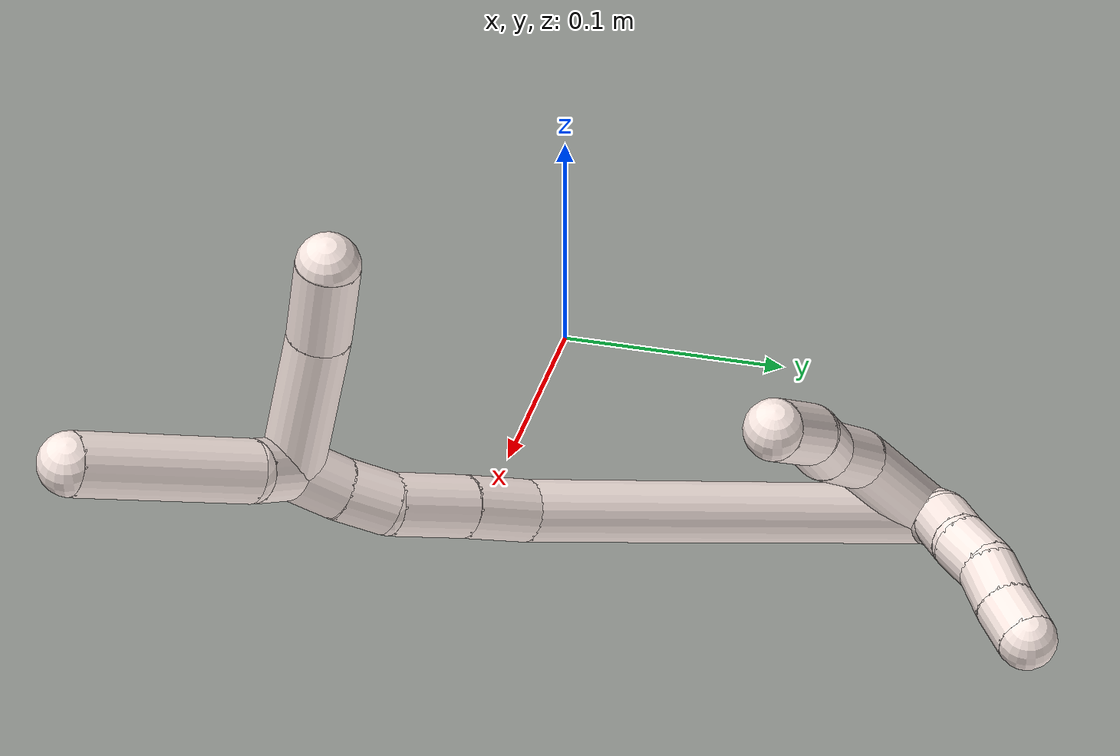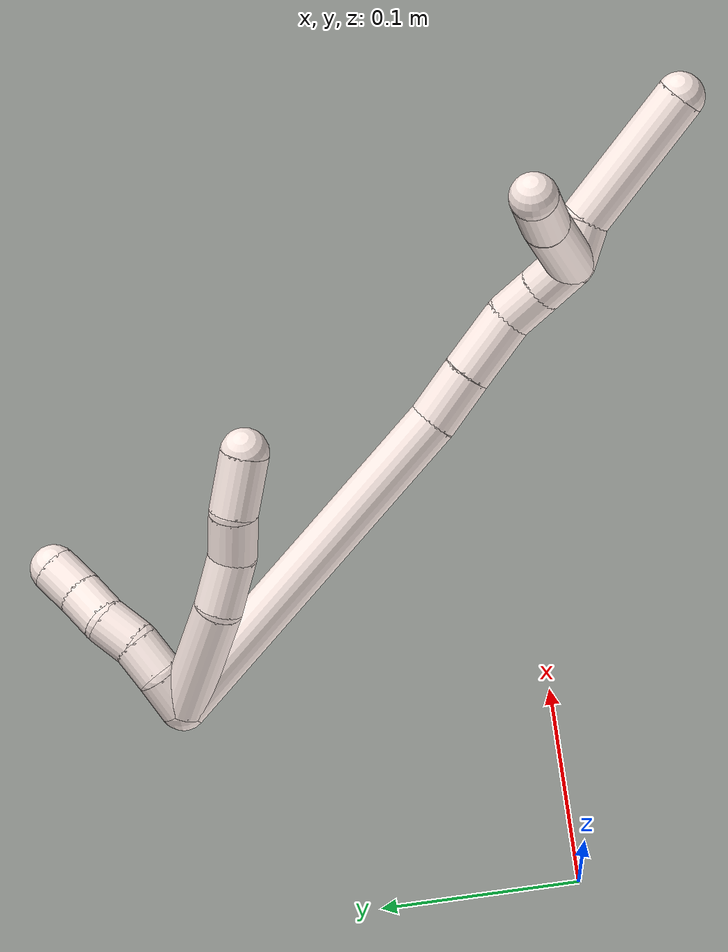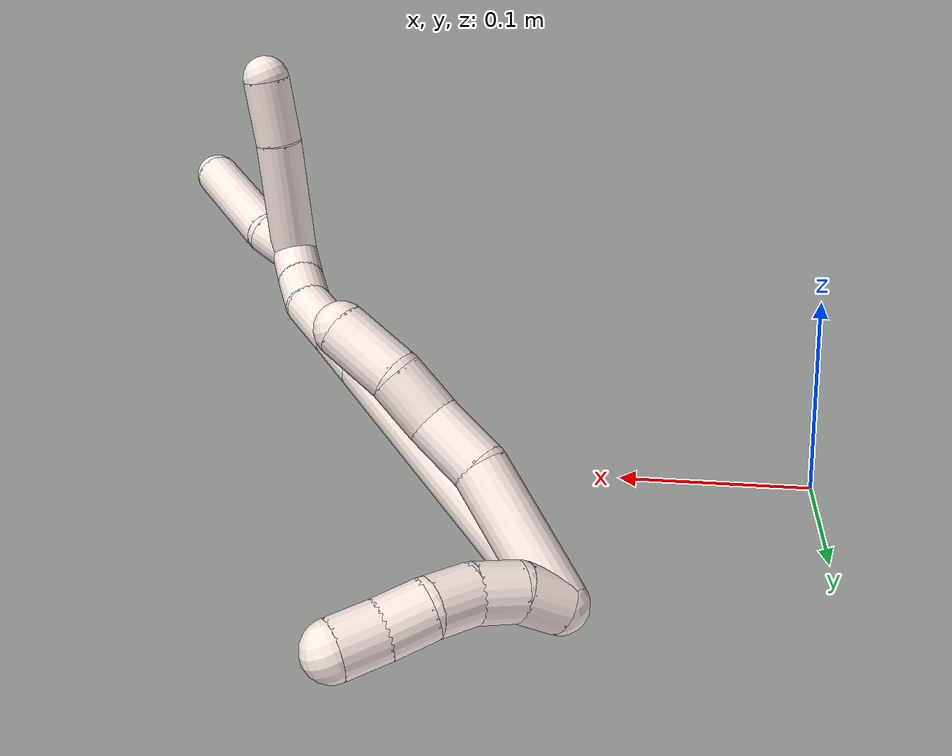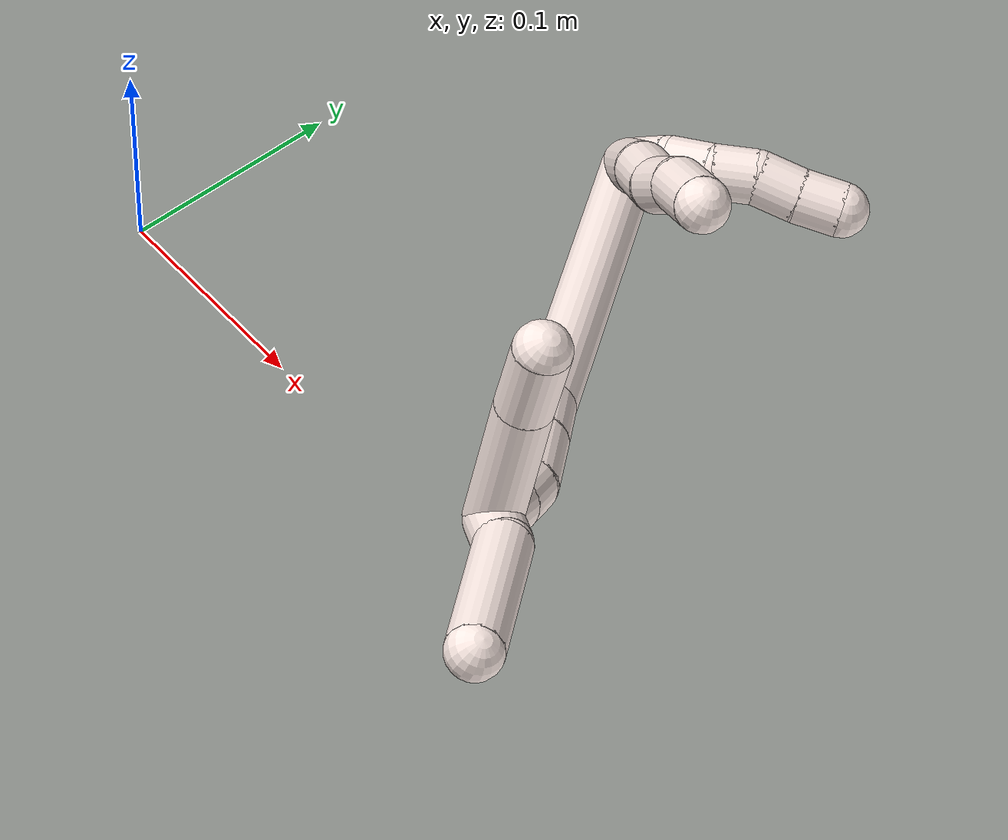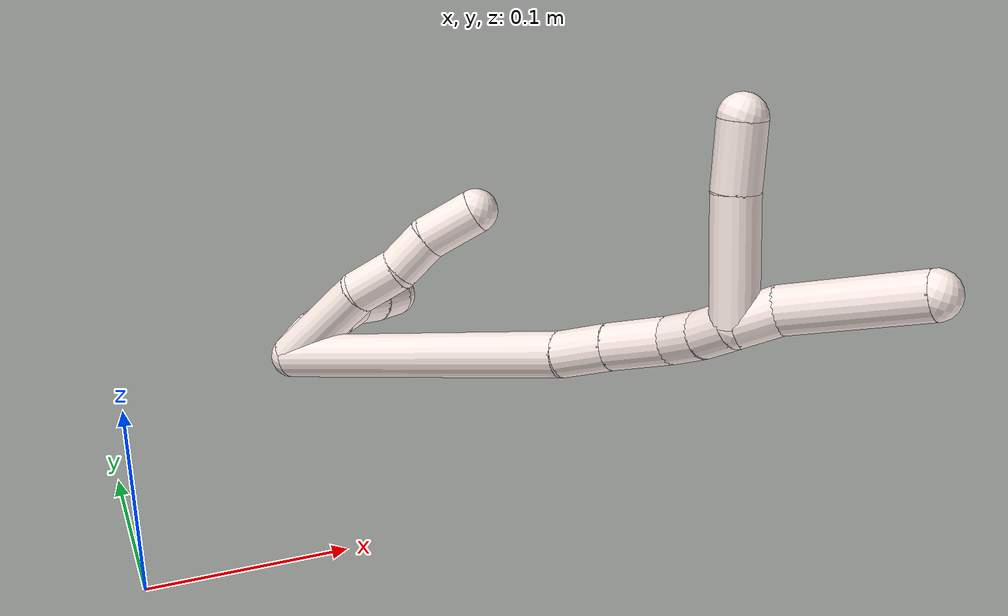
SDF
<sdf version="1.7">
 <world name="default">
  <model name="11">
   <static>0</static>
   <link name="11">
    <collision name="collision-cylinder-e_1_2_8">
     <pose>0.005855 -0.01533 0.027412 0.509931 0.184308 0.048165</pose>
     <geometry><cylinder><radius>0.0125</radius><length>0.063897</length></cylinder></geometry>
     <surface>
      <friction><ode><mu>1.16</mu><mu2>1.16</mu2><slip1>0</slip1><slip2>0</slip2></ode></friction>
      <contact><ode><kp>1e+06</kp><kd>1</kd><max_vel>0</max_vel><min_depth>0.001</min_depth></ode></contact>
     </surface>
    </collision>
    <visual name="visual-cylinder-e_1_2_8">
     <pose>0.005855 -0.01533 0.027412 0.509931 0.184308 0.048165</pose>
     <geometry><cylinder><radius>0.0125</radius><length>0.063897</length></cylinder></geometry>
     <material><ambient>1 0.933333 0.909804 1</ambient></material>
    </visual>
    <collision name="collision-cylinder-e_2_8_9">
     <pose>0.01777 -0.037814 0.065945 0.571548 0.429714 0.128061</pose>
     <geometry><cylinder><radius>0.0125</radius><length>0.029091</length></cylinder></geometry>
     <surface>
      <friction><ode><mu>1.16</mu><mu2>1.16</mu2><slip1>0</slip1><slip2>0</slip2></ode></friction>
      <contact><ode><kp>1e+06</kp><kd>1</kd><max_vel>0</max_vel><min_depth>0.001</min_depth></ode></contact>
     </surface>
    </collision>
    <visual name="visual-cylinder-e_2_8_9">
     <pose>0.01777 -0.037814 0.065945 0.571548 0.429714 0.128061</pose>
     <geometry><cylinder><radius>0.0125</radius><length>0.029091</length></cylinder></geometry>
     <material><ambient>1 0.933333 0.909804 1</ambient></material>
    </visual>
    <collision name="collision-cylinder-e_3_9_10">
     <pose>0.027973 -0.04817 0.08835 0.276596 0.33958 0.047715</pose>
     <geometry><cylinder><radius>0.0125</radius><length>0.024879</length></cylinder></geometry>
     <surface>
      <friction><ode><mu>1.16</mu><mu2>1.16</mu2><slip1>0</slip1><slip2>0</slip2></ode></friction>
      <contact><ode><kp>1e+06</kp><kd>1</kd><max_vel>0</max_vel><min_depth>0.001</min_depth></ode></contact>
     </surface>
    </collision>
    <visual name="visual-cylinder-e_3_9_10">
     <pose>0.027973 -0.04817 0.08835 0.276596 0.33958 0.047715</pose>
     <geometry><cylinder><radius>0.0125</radius><length>0.024879</length></cylinder></geometry>
     <material><ambient>1 0.933333 0.909804 1</ambient></material>
    </visual>
    <collision name="collision-cylinder-e_4_10_6">
     <pose>0.039902 -0.058368 0.111823 0.520967 0.505882 0.137571</pose>
     <geometry><cylinder><radius>0.0125</radius><length>0.032133</length></cylinder></geometry>
     <surface>
      <friction><ode><mu>1.16</mu><mu2>1.16</mu2><slip1>0</slip1><slip2>0</slip2></ode></friction>
      <contact><ode><kp>1e+06</kp><kd>1</kd><max_vel>0</max_vel><min_depth>0.001</min_depth></ode></contact>
     </surface>
    </collision>
    <visual name="visual-cylinder-e_4_10_6">
     <pose>0.039902 -0.058368 0.111823 0.520967 0.505882 0.137571</pose>
     <geometry><cylinder><radius>0.0125</radius><length>0.032133</length></cylinder></geometry>
     <material><ambient>1 0.933333 0.909804 1</ambient></material>
    </visual>
    <collision name="collision-cylinder-e_1_2_11">
     <pose>0.006086 0.003229 0.007248 -0.419073 0.654243 -0.144065</pose>
     <geometry><cylinder><radius>0.0125</radius><length>0.02</length></cylinder></geometry>
     <surface>
      <friction><ode><mu>1.16</mu><mu2>1.16</mu2><slip1>0</slip1><slip2>0</slip2></ode></friction>
      <contact><ode><kp>1e+06</kp><kd>1</kd><max_vel>0</max_vel><min_depth>0.001</min_depth></ode></contact>
     </surface>
    </collision>
    <visual name="visual-cylinder-e_1_2_11">
     <pose>0.006086 0.003229 0.007248 -0.419073 0.654243 -0.144065</pose>
     <geometry><cylinder><radius>0.0125</radius><length>0.02</length></cylinder></geometry>
     <material><ambient>1 0.933333 0.909804 1</ambient></material>
    </visual>
    <collision name="collision-cylinder-e_2_11_12">
     <pose>0.020247 0.010002 0.019212 -0.644554 0.939988 -0.336035</pose>
     <geometry><cylinder><radius>0.0125</radius><length>0.02</length></cylinder></geometry>
     <surface>
      <friction><ode><mu>1.16</mu><mu2>1.16</mu2><slip1>0</slip1><slip2>0</slip2></ode></friction>
      <contact><ode><kp>1e+06</kp><kd>1</kd><max_vel>0</max_vel><min_depth>0.001</min_depth></ode></contact>
     </surface>
    </collision>
    <visual name="visual-cylinder-e_2_11_12">
     <pose>0.020247 0.010002 0.019212 -0.644554 0.939988 -0.336035</pose>
     <geometry><cylinder><radius>0.0125</radius><length>0.02</length></cylinder></geometry>
     <material><ambient>1 0.933333 0.909804 1</ambient></material>
    </visual>
    <collision name="collision-cylinder-e_3_12_13">
     <pose>0.03611 0.019121 0.0268 -1.09488 0.892735 -0.567719</pose>
     <geometry><cylinder><radius>0.0125</radius><length>0.02</length></cylinder></geometry>
     <surface>
      <friction><ode><mu>1.16</mu><mu2>1.16</mu2><slip1>0</slip1><slip2>0</slip2></ode></friction>
      <contact><ode><kp>1e+06</kp><kd>1</kd><max_vel>0</max_vel><min_depth>0.001</min_depth></ode></contact>
     </surface>
    </collision>
    <visual name="visual-cylinder-e_3_12_13">
     <pose>0.03611 0.019121 0.0268 -1.09488 0.892735 -0.567719</pose>
     <geometry><cylinder><radius>0.0125</radius><length>0.02</length></cylinder></geometry>
     <material><ambient>1 0.933333 0.909804 1</ambient></material>
    </visual>
    <collision name="collision-cylinder-e_4_13_14">
     <pose>0.053098 0.02849 0.030657 -1.31723 1.16816 -0.945691</pose>
     <geometry><cylinder><radius>0.0125</radius><length>0.02</length></cylinder></geometry>
     <surface>
      <friction><ode><mu>1.16</mu><mu2>1.16</mu2><slip1>0</slip1><slip2>0</slip2></ode></friction>
      <contact><ode><kp>1e+06</kp><kd>1</kd><max_vel>0</max_vel><min_depth>0.001</min_depth></ode></contact>
     </surface>
    </collision>
    <visual name="visual-cylinder-e_4_13_14">
     <pose>0.053098 0.02849 0.030657 -1.31723 1.16816 -0.945691</pose>
     <geometry><cylinder><radius>0.0125</radius><length>0.02</length></cylinder></geometry>
     <material><ambient>1 0.933333 0.909804 1</ambient></material>
    </visual>
    <collision name="collision-cylinder-e_5_14_5">
     <pose>0.071097 0.036709 0.033373 -1.19759 1.07547 -0.772942</pose>
     <geometry><cylinder><radius>0.0125</radius><length>0.02</length></cylinder></geometry>
     <surface>
      <friction><ode><mu>1.16</mu><mu2>1.16</mu2><slip1>0</slip1><slip2>0</slip2></ode></friction>
      <contact><ode><kp>1e+06</kp><kd>1</kd><max_vel>0</max_vel><min_depth>0.001</min_depth></ode></contact>
     </surface>
    </collision>
    <visual name="visual-cylinder-e_5_14_5">
     <pose>0.071097 0.036709 0.033373 -1.19759 1.07547 -0.772942</pose>
     <geometry><cylinder><radius>0.0125</radius><length>0.02</length></cylinder></geometry>
     <material><ambient>1 0.933333 0.909804 1</ambient></material>
    </visual>
    <collision name="collision-cylinder-e_1_2_15">
     <pose>0.032207 -0.08067 0.039898 1.11149 0.343665 0.214726</pose>
     <geometry><cylinder><radius>0.0125</radius><length>0.191173</length></cylinder></geometry>
     <surface>
      <friction><ode><mu>1.16</mu><mu2>1.16</mu2><slip1>0</slip1><slip2>0</slip2></ode></friction>
      <contact><ode><kp>1e+06</kp><kd>1</kd><max_vel>0</max_vel><min_depth>0.001</min_depth></ode></contact>
     </surface>
    </collision>
    <visual name="visual-cylinder-e_1_2_15">
     <pose>0.032207 -0.08067 0.039898 1.11149 0.343665 0.214726</pose>
     <geometry><cylinder><radius>0.0125</radius><length>0.191173</length></cylinder></geometry>
     <material><ambient>1 0.933333 0.909804 1</ambient></material>
    </visual>
    <collision name="collision-cylinder-e_2_15_16">
     <pose>0.069592 -0.172918 0.087686 0.972671 0.353986 0.188567</pose>
     <geometry><cylinder><radius>0.0125</radius><length>0.029875</length></cylinder></geometry>
     <surface>
      <friction><ode><mu>1.16</mu><mu2>1.16</mu2><slip1>0</slip1><slip2>0</slip2></ode></friction>
      <contact><ode><kp>1e+06</kp><kd>1</kd><max_vel>0</max_vel><min_depth>0.001</min_depth></ode></contact>
     </surface>
    </collision>
    <visual name="visual-cylinder-e_2_15_16">
     <pose>0.069592 -0.172918 0.087686 0.972671 0.353986 0.188567</pose>
     <geometry><cylinder><radius>0.0125</radius><length>0.029875</length></cylinder></geometry>
     <material><ambient>1 0.933333 0.909804 1</ambient></material>
    </visual>
    <collision name="collision-cylinder-e_3_16_17">
     <pose>0.081055 -0.198397 0.104244 1.01317 0.36639 0.204888</pose>
     <geometry><cylinder><radius>0.0125</radius><length>0.035091</length></cylinder></geometry>
     <surface>
      <friction><ode><mu>1.16</mu><mu2>1.16</mu2><slip1>0</slip1><slip2>0</slip2></ode></friction>
      <contact><ode><kp>1e+06</kp><kd>1</kd><max_vel>0</max_vel><min_depth>0.001</min_depth></ode></contact>
     </surface>
    </collision>
    <visual name="visual-cylinder-e_3_16_17">
     <pose>0.081055 -0.198397 0.104244 1.01317 0.36639 0.204888</pose>
     <geometry><cylinder><radius>0.0125</radius><length>0.035091</length></cylinder></geometry>
     <material><ambient>1 0.933333 0.909804 1</ambient></material>
    </visual>
    <collision name="collision-cylinder-e_4_17_18">
     <pose>0.088293 -0.221534 0.118545 1.02325 0.087786 0.049313</pose>
     <geometry><cylinder><radius>0.0125</radius><length>0.021722</length></cylinder></geometry>
     <surface>
      <friction><ode><mu>1.16</mu><mu2>1.16</mu2><slip1>0</slip1><slip2>0</slip2></ode></friction>
      <contact><ode><kp>1e+06</kp><kd>1</kd><max_vel>0</max_vel><min_depth>0.001</min_depth></ode></contact>
     </surface>
    </collision>
    <visual name="visual-cylinder-e_4_17_18">
     <pose>0.088293 -0.221534 0.118545 1.02325 0.087786 0.049313</pose>
     <geometry><cylinder><radius>0.0125</radius><length>0.021722</length></cylinder></geometry>
     <material><ambient>1 0.933333 0.909804 1</ambient></material>
    </visual>
    <collision name="collision-cylinder-e_5_18_1">
     <pose>0.089531 -0.239735 0.130666 0.944193 0.025774 0.013161</pose>
     <geometry><cylinder><radius>0.0125</radius><length>0.022139</length></cylinder></geometry>
     <surface>
      <friction><ode><mu>1.16</mu><mu2>1.16</mu2><slip1>0</slip1><slip2>0</slip2></ode></friction>
      <contact><ode><kp>1e+06</kp><kd>1</kd><max_vel>0</max_vel><min_depth>0.001</min_depth></ode></contact>
     </surface>
    </collision>
    <visual name="visual-cylinder-e_5_18_1">
     <pose>0.089531 -0.239735 0.130666 0.944193 0.025774 0.013161</pose>
     <geometry><cylinder><radius>0.0125</radius><length>0.022139</length></cylinder></geometry>
     <material><ambient>1 0.933333 0.909804 1</ambient></material>
    </visual>
    <collision name="collision-cylinder-e_1_1_19">
     <pose>0.095962 -0.255097 0.14438 0.724866 0.567073 0.220085</pose>
     <geometry><cylinder><radius>0.0125</radius><length>0.022883</length></cylinder></geometry>
     <surface>
      <friction><ode><mu>1.16</mu><mu2>1.16</mu2><slip1>0</slip1><slip2>0</slip2></ode></friction>
      <contact><ode><kp>1e+06</kp><kd>1</kd><max_vel>0</max_vel><min_depth>0.001</min_depth></ode></contact>
     </surface>
    </collision>
    <visual name="visual-cylinder-e_1_1_19">
     <pose>0.095962 -0.255097 0.14438 0.724866 0.567073 0.220085</pose>
     <geometry><cylinder><radius>0.0125</radius><length>0.022883</length></cylinder></geometry>
     <material><ambient>1 0.933333 0.909804 1</ambient></material>
    </visual>
    <collision name="collision-cylinder-e_2_19_4">
     <pose>0.115482 -0.29258 0.170088 1.03431 0.354204 0.202903</pose>
     <geometry><cylinder><radius>0.0125</radius><length>0.077117</length></cylinder></geometry>
     <surface>
      <friction><ode><mu>1.16</mu><mu2>1.16</mu2><slip1>0</slip1><slip2>0</slip2></ode></friction>
      <contact><ode><kp>1e+06</kp><kd>1</kd><max_vel>0</max_vel><min_depth>0.001</min_depth></ode></contact>
     </surface>
    </collision>
    <visual name="visual-cylinder-e_2_19_4">
     <pose>0.115482 -0.29258 0.170088 1.03431 0.354204 0.202903</pose>
     <geometry><cylinder><radius>0.0125</radius><length>0.077117</length></cylinder></geometry>
     <material><ambient>1 0.933333 0.909804 1</ambient></material>
    </visual>
    <collision name="collision-cylinder-e_1_1_20">
     <pose>0.080117 -0.243066 0.167696 -0.182371 -0.302698 0.02789</pose>
     <geometry><cylinder><radius>0.0125</radius><length>0.06507</length></cylinder></geometry>
     <surface>
      <friction><ode><mu>1.16</mu><mu2>1.16</mu2><slip1>0</slip1><slip2>0</slip2></ode></friction>
      <contact><ode><kp>1e+06</kp><kd>1</kd><max_vel>0</max_vel><min_depth>0.001</min_depth></ode></contact>
     </surface>
    </collision>
    <visual name="visual-cylinder-e_1_1_20">
     <pose>0.080117 -0.243066 0.167696 -0.182371 -0.302698 0.02789</pose>
     <geometry><cylinder><radius>0.0125</radius><length>0.06507</length></cylinder></geometry>
     <material><ambient>1 0.933333 0.909804 1</ambient></material>
    </visual>
    <collision name="collision-cylinder-e_2_20_3">
     <pose>0.066184 -0.235412 0.21506 -0.119609 -0.244906 0.014737</pose>
     <geometry><cylinder><radius>0.0125</radius><length>0.03493</length></cylinder></geometry>
     <surface>
      <friction><ode><mu>1.16</mu><mu2>1.16</mu2><slip1>0</slip1><slip2>0</slip2></ode></friction>
      <contact><ode><kp>1e+06</kp><kd>1</kd><max_vel>0</max_vel><min_depth>0.001</min_depth></ode></contact>
     </surface>
    </collision>
    <visual name="visual-cylinder-e_2_20_3">
     <pose>0.066184 -0.235412 0.21506 -0.119609 -0.244906 0.014737</pose>
     <geometry><cylinder><radius>0.0125</radius><length>0.03493</length></cylinder></geometry>
     <material><ambient>1 0.933333 0.909804 1</ambient></material>
    </visual>
    <collision name="collision-sphere-3">
     <pose>0.06195 -0.23339 0.231882 0 -0 0</pose>
     <geometry><sphere><radius>0.0125</radius></sphere></geometry>
     <surface>
      <friction><ode><mu>1.16</mu><mu2>1.16</mu2><slip1>0</slip1><slip2>0</slip2></ode></friction>
      <contact><ode><kp>1e+06</kp><kd>1</kd><max_vel>0</max_vel><min_depth>0.001</min_depth></ode></contact>
     </surface>
    </collision>
    <visual name="visual-sphere-3">
     <pose>0.06195 -0.23339 0.231882 0 -0 0</pose>
     <geometry><sphere><radius>0.0125</radius></sphere></geometry>
     <material><ambient>1 0.933333 0.909804 1</ambient></material>
    </visual>
    <collision name="collision-sphere-20">
     <pose>0.070419 -0.237434 0.198237 0 -0 0</pose>
     <geometry><sphere><radius>0.0125</radius></sphere></geometry>
     <surface>
      <friction><ode><mu>1.16</mu><mu2>1.16</mu2><slip1>0</slip1><slip2>0</slip2></ode></friction>
      <contact><ode><kp>1e+06</kp><kd>1</kd><max_vel>0</max_vel><min_depth>0.001</min_depth></ode></contact>
     </surface>
    </collision>
    <visual name="visual-sphere-20">
     <pose>0.070419 -0.237434 0.198237 0 -0 0</pose>
     <geometry><sphere><radius>0.0125</radius></sphere></geometry>
     <material><ambient>1 0.933333 0.909804 1</ambient></material>
    </visual>
    <collision name="collision-sphere-4">
     <pose>0.128855 -0.323664 0.188573 0 -0 0</pose>
     <geometry><sphere><radius>0.0125</radius></sphere></geometry>
     <surface>
      <friction><ode><mu>1.16</mu><mu2>1.16</mu2><slip1>0</slip1><slip2>0</slip2></ode></friction>
      <contact><ode><kp>1e+06</kp><kd>1</kd><max_vel>0</max_vel><min_depth>0.001</min_depth></ode></contact>
     </surface>
    </collision>
    <visual name="visual-sphere-4">
     <pose>0.128855 -0.323664 0.188573 0 -0 0</pose>
     <geometry><sphere><radius>0.0125</radius></sphere></geometry>
     <material><ambient>1 0.933333 0.909804 1</ambient></material>
    </visual>
    <collision name="collision-sphere-11">
     <pose>0.012171 0.006458 0.014497 0 -0 0</pose>
     <geometry><sphere><radius>0.0125</radius></sphere></geometry>
     <surface>
      <friction><ode><mu>1.16</mu><mu2>1.16</mu2><slip1>0</slip1><slip2>0</slip2></ode></friction>
      <contact><ode><kp>1e+06</kp><kd>1</kd><max_vel>0</max_vel><min_depth>0.001</min_depth></ode></contact>
     </surface>
    </collision>
    <visual name="visual-sphere-11">
     <pose>0.012171 0.006458 0.014497 0 -0 0</pose>
     <geometry><sphere><radius>0.0125</radius></sphere></geometry>
     <material><ambient>1 0.933333 0.909804 1</ambient></material>
    </visual>
    <collision name="collision-sphere-6">
     <pose>0.047688 -0.065363 0.124012 0 -0 0</pose>
     <geometry><sphere><radius>0.0125</radius></sphere></geometry>
     <surface>
      <friction><ode><mu>1.16</mu><mu2>1.16</mu2><slip1>0</slip1><slip2>0</slip2></ode></friction>
      <contact><ode><kp>1e+06</kp><kd>1</kd><max_vel>0</max_vel><min_depth>0.001</min_depth></ode></contact>
     </surface>
    </collision>
    <visual name="visual-sphere-6">
     <pose>0.047688 -0.065363 0.124012 0 -0 0</pose>
     <geometry><sphere><radius>0.0125</radius></sphere></geometry>
     <material><ambient>1 0.933333 0.909804 1</ambient></material>
    </visual>
    <collision name="collision-sphere-10">
     <pose>0.032117 -0.051373 0.099633 0 -0 0</pose>
     <geometry><sphere><radius>0.0125</radius></sphere></geometry>
     <surface>
      <friction><ode><mu>1.16</mu><mu2>1.16</mu2><slip1>0</slip1><slip2>0</slip2></ode></friction>
      <contact><ode><kp>1e+06</kp><kd>1</kd><max_vel>0</max_vel><min_depth>0.001</min_depth></ode></contact>
     </surface>
    </collision>
    <visual name="visual-sphere-10">
     <pose>0.032117 -0.051373 0.099633 0 -0 0</pose>
     <geometry><sphere><radius>0.0125</radius></sphere></geometry>
     <material><ambient>1 0.933333 0.909804 1</ambient></material>
    </visual>
    <collision name="collision-sphere-9">
     <pose>0.02383 -0.044966 0.077066 0 -0 0</pose>
     <geometry><sphere><radius>0.0125</radius></sphere></geometry>
     <surface>
      <friction><ode><mu>1.16</mu><mu2>1.16</mu2><slip1>0</slip1><slip2>0</slip2></ode></friction>
      <contact><ode><kp>1e+06</kp><kd>1</kd><max_vel>0</max_vel><min_depth>0.001</min_depth></ode></contact>
     </surface>
    </collision>
    <visual name="visual-sphere-9">
     <pose>0.02383 -0.044966 0.077066 0 -0 0</pose>
     <geometry><sphere><radius>0.0125</radius></sphere></geometry>
     <material><ambient>1 0.933333 0.909804 1</ambient></material>
    </visual>
    <collision name="collision-sphere-2">
     <geometry><sphere><radius>0.0125</radius></sphere></geometry>
     <surface>
      <friction><ode><mu>1.16</mu><mu2>1.16</mu2><slip1>0</slip1><slip2>0</slip2></ode></friction>
      <contact><ode><kp>1e+06</kp><kd>1</kd><max_vel>0</max_vel><min_depth>0.001</min_depth></ode></contact>
     </surface>
    </collision>
    <visual name="visual-sphere-2">
     <geometry><sphere><radius>0.0125</radius></sphere></geometry>
     <material><ambient>1 0.933333 0.909804 1</ambient></material>
    </visual>
    <collision name="collision-sphere-19">
     <pose>0.102108 -0.261496 0.151604 0 -0 0</pose>
     <geometry><sphere><radius>0.0125</radius></sphere></geometry>
     <surface>
      <friction><ode><mu>1.16</mu><mu2>1.16</mu2><slip1>0</slip1><slip2>0</slip2></ode></friction>
      <contact><ode><kp>1e+06</kp><kd>1</kd><max_vel>0</max_vel><min_depth>0.001</min_depth></ode></contact>
     </surface>
    </collision>
    <visual name="visual-sphere-19">
     <pose>0.102108 -0.261496 0.151604 0 -0 0</pose>
     <geometry><sphere><radius>0.0125</radius></sphere></geometry>
     <material><ambient>1 0.933333 0.909804 1</ambient></material>
    </visual>
    <collision name="collision-sphere-8">
     <pose>0.01171 -0.030661 0.054823 0 -0 0</pose>
     <geometry><sphere><radius>0.0125</radius></sphere></geometry>
     <surface>
      <friction><ode><mu>1.16</mu><mu2>1.16</mu2><slip1>0</slip1><slip2>0</slip2></ode></friction>
      <contact><ode><kp>1e+06</kp><kd>1</kd><max_vel>0</max_vel><min_depth>0.001</min_depth></ode></contact>
     </surface>
    </collision>
    <visual name="visual-sphere-8">
     <pose>0.01171 -0.030661 0.054823 0 -0 0</pose>
     <geometry><sphere><radius>0.0125</radius></sphere></geometry>
     <material><ambient>1 0.933333 0.909804 1</ambient></material>
    </visual>
    <collision name="collision-sphere-12">
     <pose>0.028322 0.013545 0.023926 0 -0 0</pose>
     <geometry><sphere><radius>0.0125</radius></sphere></geometry>
     <surface>
      <friction><ode><mu>1.16</mu><mu2>1.16</mu2><slip1>0</slip1><slip2>0</slip2></ode></friction>
      <contact><ode><kp>1e+06</kp><kd>1</kd><max_vel>0</max_vel><min_depth>0.001</min_depth></ode></contact>
     </surface>
    </collision>
    <visual name="visual-sphere-12">
     <pose>0.028322 0.013545 0.023926 0 -0 0</pose>
     <geometry><sphere><radius>0.0125</radius></sphere></geometry>
     <material><ambient>1 0.933333 0.909804 1</ambient></material>
    </visual>
    <collision name="collision-sphere-13">
     <pose>0.043898 0.024697 0.029674 0 -0 0</pose>
     <geometry><sphere><radius>0.0125</radius></sphere></geometry>
     <surface>
      <friction><ode><mu>1.16</mu><mu2>1.16</mu2><slip1>0</slip1><slip2>0</slip2></ode></friction>
      <contact><ode><kp>1e+06</kp><kd>1</kd><max_vel>0</max_vel><min_depth>0.001</min_depth></ode></contact>
     </surface>
    </collision>
    <visual name="visual-sphere-13">
     <pose>0.043898 0.024697 0.029674 0 -0 0</pose>
     <geometry><sphere><radius>0.0125</radius></sphere></geometry>
     <material><ambient>1 0.933333 0.909804 1</ambient></material>
    </visual>
    <collision name="collision-sphere-14">
     <pose>0.062299 0.032283 0.03164 0 -0 0</pose>
     <geometry><sphere><radius>0.0125</radius></sphere></geometry>
     <surface>
      <friction><ode><mu>1.16</mu><mu2>1.16</mu2><slip1>0</slip1><slip2>0</slip2></ode></friction>
      <contact><ode><kp>1e+06</kp><kd>1</kd><max_vel>0</max_vel><min_depth>0.001</min_depth></ode></contact>
     </surface>
    </collision>
    <visual name="visual-sphere-14">
     <pose>0.062299 0.032283 0.03164 0 -0 0</pose>
     <geometry><sphere><radius>0.0125</radius></sphere></geometry>
     <material><ambient>1 0.933333 0.909804 1</ambient></material>
    </visual>
    <collision name="collision-sphere-5">
     <pose>0.079895 0.041135 0.035106 0 -0 0</pose>
     <geometry><sphere><radius>0.0125</radius></sphere></geometry>
     <surface>
      <friction><ode><mu>1.16</mu><mu2>1.16</mu2><slip1>0</slip1><slip2>0</slip2></ode></friction>
      <contact><ode><kp>1e+06</kp><kd>1</kd><max_vel>0</max_vel><min_depth>0.001</min_depth></ode></contact>
     </surface>
    </collision>
    <visual name="visual-sphere-5">
     <pose>0.079895 0.041135 0.035106 0 -0 0</pose>
     <geometry><sphere><radius>0.0125</radius></sphere></geometry>
     <material><ambient>1 0.933333 0.909804 1</ambient></material>
    </visual>
    <collision name="collision-sphere-15">
     <pose>0.064414 -0.16134 0.079796 0 -0 0</pose>
     <geometry><sphere><radius>0.0125</radius></sphere></geometry>
     <surface>
      <friction><ode><mu>1.16</mu><mu2>1.16</mu2><slip1>0</slip1><slip2>0</slip2></ode></friction>
      <contact><ode><kp>1e+06</kp><kd>1</kd><max_vel>0</max_vel><min_depth>0.001</min_depth></ode></contact>
     </surface>
    </collision>
    <visual name="visual-sphere-15">
     <pose>0.064414 -0.16134 0.079796 0 -0 0</pose>
     <geometry><sphere><radius>0.0125</radius></sphere></geometry>
     <material><ambient>1 0.933333 0.909804 1</ambient></material>
    </visual>
    <collision name="collision-sphere-16">
     <pose>0.07477 -0.184497 0.095576 0 -0 0</pose>
     <geometry><sphere><radius>0.0125</radius></sphere></geometry>
     <surface>
      <friction><ode><mu>1.16</mu><mu2>1.16</mu2><slip1>0</slip1><slip2>0</slip2></ode></friction>
      <contact><ode><kp>1e+06</kp><kd>1</kd><max_vel>0</max_vel><min_depth>0.001</min_depth></ode></contact>
     </surface>
    </collision>
    <visual name="visual-sphere-16">
     <pose>0.07477 -0.184497 0.095576 0 -0 0</pose>
     <geometry><sphere><radius>0.0125</radius></sphere></geometry>
     <material><ambient>1 0.933333 0.909804 1</ambient></material>
    </visual>
    <collision name="collision-sphere-17">
     <pose>0.087341 -0.212296 0.112913 0 -0 0</pose>
     <geometry><sphere><radius>0.0125</radius></sphere></geometry>
     <surface>
      <friction><ode><mu>1.16</mu><mu2>1.16</mu2><slip1>0</slip1><slip2>0</slip2></ode></friction>
      <contact><ode><kp>1e+06</kp><kd>1</kd><max_vel>0</max_vel><min_depth>0.001</min_depth></ode></contact>
     </surface>
    </collision>
    <visual name="visual-sphere-17">
     <pose>0.087341 -0.212296 0.112913 0 -0 0</pose>
     <geometry><sphere><radius>0.0125</radius></sphere></geometry>
     <material><ambient>1 0.933333 0.909804 1</ambient></material>
    </visual>
    <collision name="collision-sphere-18">
     <pose>0.089245 -0.230771 0.124177 0 -0 0</pose>
     <geometry><sphere><radius>0.0125</radius></sphere></geometry>
     <surface>
      <friction><ode><mu>1.16</mu><mu2>1.16</mu2><slip1>0</slip1><slip2>0</slip2></ode></friction>
      <contact><ode><kp>1e+06</kp><kd>1</kd><max_vel>0</max_vel><min_depth>0.001</min_depth></ode></contact>
     </surface>
    </collision>
    <visual name="visual-sphere-18">
     <pose>0.089245 -0.230771 0.124177 0 -0 0</pose>
     <geometry><sphere><radius>0.0125</radius></sphere></geometry>
     <material><ambient>1 0.933333 0.909804 1</ambient></material>
    </visual>
    <collision name="collision-sphere-1">
     <pose>0.089816 -0.248698 0.137155 0 -0 0</pose>
     <geometry><sphere><radius>0.0125</radius></sphere></geometry>
     <surface>
      <friction><ode><mu>1.16</mu><mu2>1.16</mu2><slip1>0</slip1><slip2>0</slip2></ode></friction>
      <contact><ode><kp>1e+06</kp><kd>1</kd><max_vel>0</max_vel><min_depth>0.001</min_depth></ode></contact>
     </surface>
    </collision>
    <visual name="visual-sphere-1">
     <pose>0.089816 -0.248698 0.137155 0 -0 0</pose>
     <geometry><sphere><radius>0.0125</radius></sphere></geometry>
     <material><ambient>1 0.933333 0.909804 1</ambient></material>
    </visual>
    <inertial>
     <pose>0.053612 -0.124415 0.088033 0 -0 0</pose>
     <mass>0.75</mass>
     <inertia>
      <ixx>0.000805</ixx>
      <ixy>0</ixy>
      <ixz>0</ixz>
      <iyy>0.000494</iyy>
      <iyz>0</iyz>
      <izz>0.000361</izz>
     </inertia>
    </inertial>
   </link>
   <pose>0.11452 0.184406 0.01151 -0.033292 0.388421 0.15413</pose>
  </model>
 </world>
</sdf>
